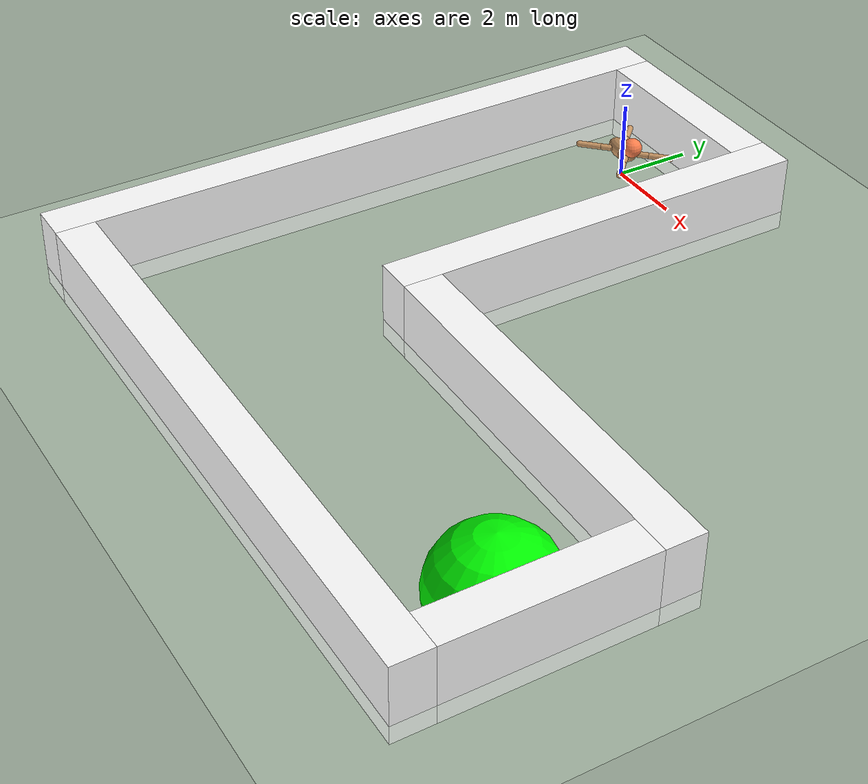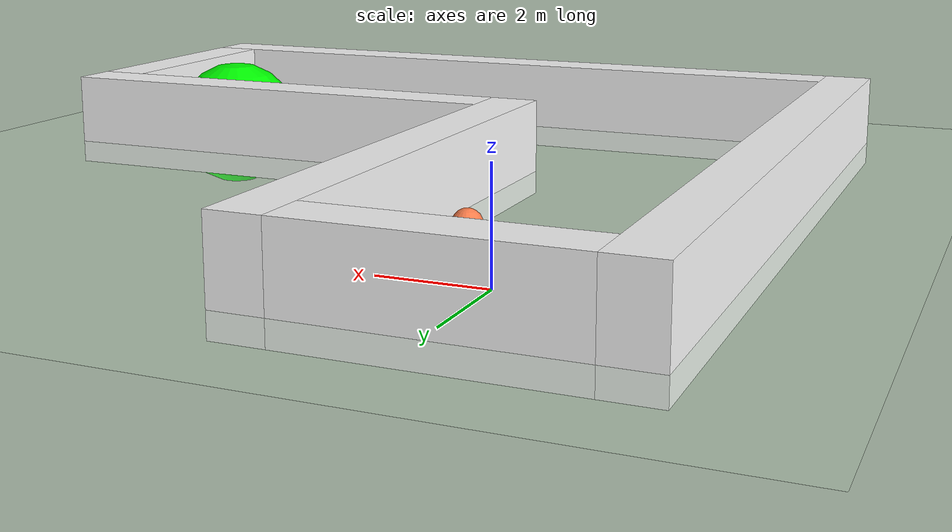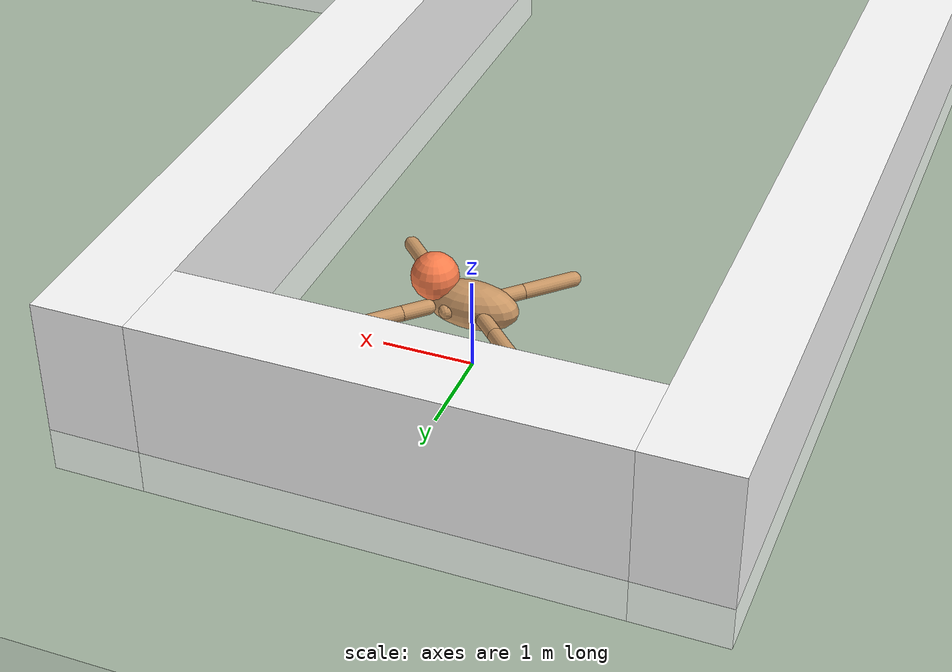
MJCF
<mujoco model="ant">
  <compiler angle="degree" coordinate="local" inertiafromgeom="true" settotalmass="40"/>
  <option integrator="RK4" timestep="0.005"/>
  <custom>
    <numeric data="0.0 0.0 0.55 1.0 0.0 0.0 0.0 0.0 1.0 0.0 -1.0 0.0 -1.0 0.0 1.0" name="init_qpos"/>
  </custom>
  <default>
    <joint armature="1" damping="1" limited="true"/>
    <geom conaffinity="1" contype="1" condim="3" density="5.0" friction="1 0.5 0.5" margin="0.01" rgba="0.8 0.6 0.4 1" material="geom"/>
  </default>
    <asset>
        <texture type="skybox" builtin="gradient" rgb1=".1 .12 .15" rgb2="0 0 0" width="100" height="100"/>
        <texture builtin="checker" height="100" name="texplane" rgb1=".1 .1 .1" rgb2=".15 .15 0.15" type="2d" width="100"/>
        <material name="MatPlane" reflectance="0.5" shininess="1" specular="1" texrepeat="50 50" texture="texplane"/>
        <texture builtin="flat" height="1278" mark="cross" markrgb="1 1 1" name="texgeom" random="0.01" rgb1="0.8 0.6 0.4" rgb2="0.8 0.6 0.4" type="cube" width="127"/>
        <material name="geom" texture="texgeom" texuniform="true"/>
    </asset>
  <worldbody>
    <light directional="true" cutoff="100" exponent="1" diffuse="1 1 1" specular=".1 .1 .1" pos="0 0 1.3" dir="-0 0 -1.3" />
    <geom name='floor' material="MatPlane" pos='0 0 0' size='40 40 40' type='plane' rgba='0.8 0.9 0.8 1' condim='3' group="1"/>

    <geom name="wall-0" pos=" 3.0  -3.0  0.5" rgba="1. 1. 1. 1" size="0.5 5.5 1.0" type="box" material="" group="1" />
    <geom name="wall-1" pos=" 0.0   2.0  0.5" rgba="1. 1. 1. 1" size="2.5 0.5 1.0" type="box" material="" group="1" />
    <geom name="wall-2" pos="-3.0  -6.0  0.5" rgba="1. 1. 1. 1" size="0.5 8.5 1.0" type="box" material="" group="1" />
    <geom name="wall-3" pos=" 5.5 -14.0  0.5" rgba="1. 1. 1. 1" size="8.0 0.5 1.0" type="box" material="" group="1" />
    <geom name="wall-4" pos="13.0 -11.0  0.5" rgba="1. 1. 1. 1" size="0.5 2.5 1.0" type="box" material="" group="1" />
    <geom name="wall-5" pos=" 8.5  -8.0  0.5" rgba="1. 1. 1. 1" size="5.0 0.5 1.0" type="box" material="" group="1" />

    <body name="torso" pos="0 0 0.75">
      <geom name="torso_geom" pos="0 0 0" size="0.50 0.25 0.25" type="ellipsoid"/>
      <geom name="head" density="0.01" rgba="1.0 0.5 0.3 1" pos="0.4 0 0.25" size="0.25" type="sphere"/>
      <joint armature="0" damping="0" limited="false" margin="0.01" name="root" pos="0 0 0" type="free"/>
      <body name="front_left_leg" pos="0 0 0">
        <geom fromto="0.0 0.0 0.0 0.2 0.2 0.0" name="aux_1_geom" size="0.08" type="capsule"/>
        <body name="aux_1" pos="0.4 0.2 0">
          <joint axis="0 0 1" name="hip_1" pos="0.0 0.0 0.0" range="-30 30" type="hinge"/>
          <geom fromto="0.0 0.0 0.0 0.2 0.2 0.0" name="left_leg_geom" size="0.08" type="capsule"/>
          <body pos="0.2 0.2 0">
            <joint axis="-1 1 0" name="ankle_1" pos="0.0 0.0 0.0" range="30 70" type="hinge"/>
            <geom fromto="0.0 0.0 0.0 0.4 0.4 0.0" name="left_ankle_geom" size="0.08" type="capsule"/>
          </body>
        </body>
      </body>
      <body name="front_right_leg" pos="0 0 0">
        <geom fromto="0.0 0.0 0.0 -0.2 0.2 0.0" name="aux_2_geom" size="0.08" type="capsule"/>
        <body name="aux_2" pos="-0.2 0.2 0">
          <joint axis="0 0 1" name="hip_2" pos="0.0 0.0 0.0" range="-30 30" type="hinge"/>
          <geom fromto="0.0 0.0 0.0 -0.2 0.2 0.0" name="right_leg_geom" size="0.08" type="capsule"/>
          <body pos="-0.2 0.2 0">
            <joint axis="1 1 0" name="ankle_2" pos="0.0 0.0 0.0" range="-70 -30" type="hinge"/>
            <geom fromto="0.0 0.0 0.0 -0.4 0.4 0.0" name="right_ankle_geom" size="0.08" type="capsule"/>
          </body>
        </body>
      </body>
      <body name="back_leg" pos="0 0 0">
        <geom fromto="0.0 0.0 0.0 -0.2 -0.2 0.0" name="aux_3_geom" size="0.08" type="capsule"/>
        <body name="aux_3" pos="-0.2 -0.2 0">
          <joint axis="0 0 1" name="hip_3" pos="0.0 0.0 0.0" range="-30 30" type="hinge"/>
          <geom fromto="0.0 0.0 0.0 -0.2 -0.2 0.0" name="back_leg_geom" size="0.08" type="capsule"/>
          <body pos="-0.2 -0.2 0">
            <joint axis="-1 1 0" name="ankle_3" pos="0.0 0.0 0.0" range="-70 -30" type="hinge"/>
            <geom fromto="0.0 0.0 0.0 -0.4 -0.4 0.0" name="third_ankle_geom" size="0.08" type="capsule"/>
          </body>
        </body>
      </body>
      <body name="right_back_leg" pos="0 0 0">
        <geom fromto="0.0 0.0 0.0 0.2 -0.2 0.0" name="aux_4_geom" size="0.08" type="capsule"/>
        <body name="aux_4" pos="0.4 -0.2 0">
          <joint axis="0 0 1" name="hip_4" pos="0.0 0.0 0.0" range="-30 30" type="hinge"/>
          <geom fromto="0.0 0.0 0.0 0.2 -0.2 0.0" name="rightback_leg_geom" size="0.08" type="capsule"/>
          <body pos="0.2 -0.2 0">
            <joint axis="1 1 0" name="ankle_4" pos="0.0 0.0 0.0" range="30 70" type="hinge"/>
            <geom fromto="0.0 0.0 0.0 0.4 -0.4 0.0" name="fourth_ankle_geom" size="0.08" type="capsule"/>
          </body>
        </body>
      </body>
    </body>
    <geom name="target" pos="11.5 -11.0 0.0" rgba="0 1 0 1.0" size="1.5" type="sphere" group="1" contype="0" conaffinity="0" />
  </worldbody>
  <actuator>
    <motor ctrllimited="true" ctrlrange="-1.0 1.0" joint="hip_4" gear="150"/>
    <motor ctrllimited="true" ctrlrange="-1.0 1.0" joint="ankle_4" gear="150"/>
    <motor ctrllimited="true" ctrlrange="-1.0 1.0" joint="hip_1" gear="150"/>
    <motor ctrllimited="true" ctrlrange="-1.0 1.0" joint="ankle_1" gear="150"/>
    <motor ctrllimited="true" ctrlrange="-1.0 1.0" joint="hip_2" gear="150"/>
    <motor ctrllimited="true" ctrlrange="-1.0 1.0" joint="ankle_2" gear="150"/>
    <motor ctrllimited="true" ctrlrange="-1.0 1.0" joint="hip_3" gear="150"/>
    <motor ctrllimited="true" ctrlrange="-1.0 1.0" joint="ankle_3" gear="150"/>
  </actuator>
  <sensor>
    <jointpos name='pos_hip_1' joint='hip_1' />
    <jointpos name='pos_hip_2' joint='hip_2' />
    <jointpos name='pos_hip_3' joint='hip_3' />
    <jointpos name='pos_hip_4' joint='hip_4' />
    <jointpos name='pos_ankle_1' joint='ankle_1' />
    <jointpos name='pos_ankle_2' joint='ankle_2' />
    <jointpos name='pos_ankle_3' joint='ankle_3' />
    <jointpos name='pos_ankle_4' joint='ankle_4' />

    <jointvel name='vel_hip_1'   joint='hip_1' />
    <jointvel name='vel_hip_2'   joint='hip_2' />
    <jointvel name='vel_hip_3'   joint='hip_3' />
    <jointvel name='vel_hip_4'   joint='hip_4' />
    <jointvel name='vel_ankle_1' joint='ankle_1' />
    <jointvel name='vel_ankle_2' joint='ankle_2' />
    <jointvel name='vel_ankle_3' joint='ankle_3' />
    <jointvel name='vel_ankle_4' joint='ankle_4' />
  </sensor>
</mujoco>
